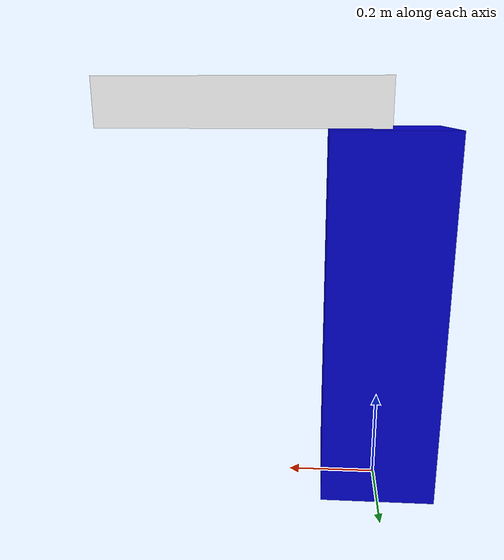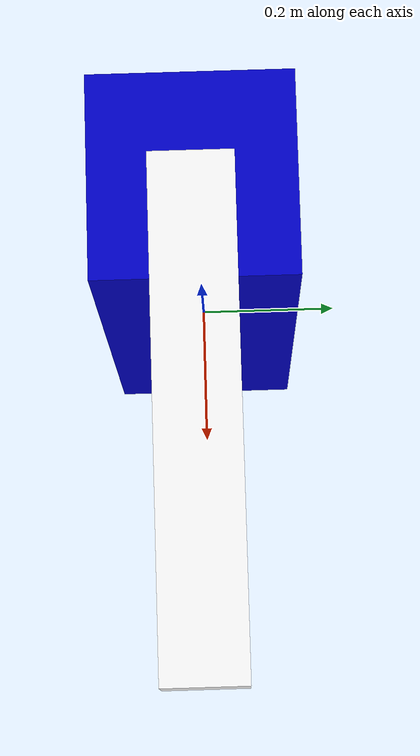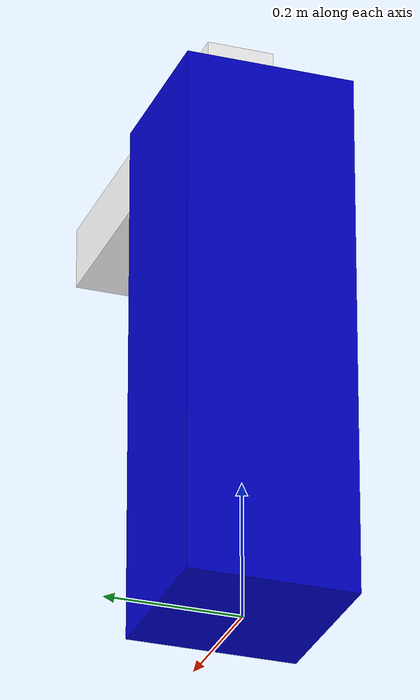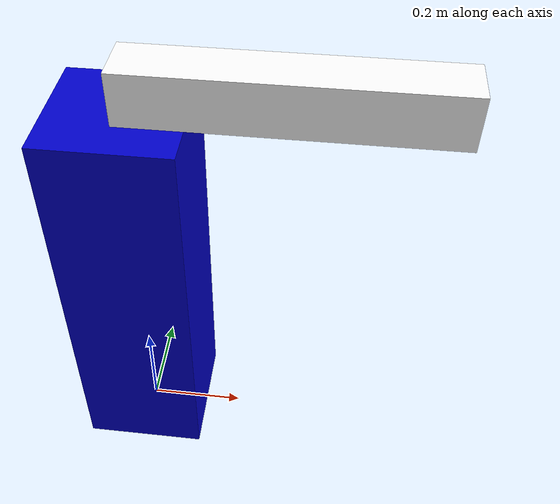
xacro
<?xml version="1.0"?>
<robot name="manipulator_2dof" xmlns:xacro="http://www.ros.org/wiki/xacro">

    <xacro:include filename="$(find arcs2_description)/urdf/inertias.xacro"/>
    <xacro:include filename="$(find arcs2_description)/urdf/materials.xacro"/>
    <xacro:include filename="$(find arcs2_description)/urdf/ros2_control_manipulator.xacro"/>

    <xacro:property name="prismatic_min_travel" value="-0.01"/>
    <xacro:property name="prismatic_max_travel" value="1"/>

    <xacro:property name="link1_length" value="0.25"/>
    <xacro:property name="link1_width" value="0.25"/>
    <xacro:property name="link1_height" value="0.8"/>
    <xacro:property name="link1_mass" value="5.0"/>

    <xacro:property name="revolute_min_angle" value="-${pi/4}"/>
    <xacro:property name="revolute_max_angle" value="${pi/4}"/>

    <xacro:property name="link2_length" value="0.6"/>
    <xacro:property name="link2_width" value="0.1"/>
    <xacro:property name="link2_height" value="0.1"/>
    <xacro:property name="link2_mass" value="5.0"/>

    <link name="world">
    </link>

    <joint name="joint1" type="prismatic">
        <parent link="world"/>
        <child link="link1"/>
        <origin xyz="0 0 0" rpy="0 0 0"/>
        <axis xyz="0 0 1"/>
        <limit lower="${prismatic_min_travel}" upper="${prismatic_max_travel}" effort="100" velocity="1"/>
    </joint>

    <link name="link1">
        <visual>
            <origin xyz="0 0 ${link1_height/2}" rpy="0 0 0"/>
            <geometry>
                <box size="${link1_length} ${link1_width} ${link1_height}"/>
            </geometry>
            <material name="blue"/>
        </visual>
        <collision>
            <origin xyz="0 0 ${link1_height/2}" rpy="0 0 0"/>
            <geometry>
                <box size="${link1_length} ${link1_width} ${link1_height}"/>
            </geometry>
        </collision>
        <xacro:inertial_box mass="${link1_mass}" x="${link1_length}" y="${link1_width}" z="${link1_height}">
            <origin xyz="0 0 ${link1_height/2}" rpy="0 0 0"/>
        </xacro:inertial_box>
    </link>

    <joint name="joint2" type="revolute">
        <parent link="link1"/>
        <child link="link2"/>
        <origin xyz="0 0 ${link1_height}" rpy="${pi/2} 0 0"/>
        <axis xyz="0 0 1"/>
        <limit lower="${revolute_min_angle}" upper="${revolute_max_angle}" effort="100" velocity="1"/>
    </joint>

    <link name="link2">
        <visual>
            <origin xyz="${link2_length/2} ${link2_width/2} 0" rpy="0 0 0"/>
            <geometry>
                <box size="${link2_length} ${link2_width} ${link2_height}"/>
            </geometry>
            <material name="white"/>
        </visual>
        <collision>
            <origin xyz="${link2_length/2} ${link2_width/2} 0" rpy="0 0 0"/>
            <geometry>
                <box size="${link2_length} ${link2_width} ${link2_height}"/>
            </geometry>
        </collision>
        <xacro:inertial_box mass="${link2_mass}" x="${link2_length}" y="${link2_width}" z="${link2_height}">
            <origin xyz="${link1_length/2} ${link2_width/2} 0" rpy="0 0 0"/>
        </xacro:inertial_box>
    </link>

    <joint name="ee" type="fixed">
        <parent link="link2"/>
        <child link="ee_link"/>
        <origin xyz="${link2_length} ${link2_width/2} 0" rpy="0 0 0"/>
    </joint>

    <link name="ee_link">
    </link>

</robot>

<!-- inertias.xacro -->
<robot xmlns:xacro="http://www.ros.org/wiki/xacro">

  <xacro:macro name="inertial_box" params="mass x y z *origin">
    <inertial>
      <xacro:insert_block name="origin"/>
      <mass value="${mass}"/>
      <inertia ixx="${(1/12) * mass * (y*y+z*z)}" ixy="0.0" ixz="0.0"
               iyy="${(1/12) * mass * (x*x+z*z)}" iyz="0.0"
               izz="${(1/12) * mass * (x*x+y*y)}"/>
    </inertial>
  </xacro:macro>

  <xacro:macro name="inertial_cylinder" params="mass radius length *origin">
    <inertial>
      <xacro:insert_block name="origin"/>
      <mass value="${mass}"/>
      <inertia ixx="${(1/12) * mass * (3*radius*radius + length*length)}" ixy="0.0" ixz="0.0"
               iyy="${(1/12) * mass * (3*radius*radius + length*length)}" iyz="0.0"
               izz="${(1/2) * mass * radius*radius}"/>
    </inertial>
  </xacro:macro>

  <xacro:macro name="inertial_sphere" params="mass radius *origin">
    <inertial>
      <xacro:insert_block name="origin"/>
      <mass value="${mass}"/>
      <inertia ixx="${(2/5) * mass * radius*radius}" ixy="0.0" ixz="0.0"
               iyy="${(2/5) * mass * radius*radius}" iyz="0.0"
               izz="${(2/5) * mass * radius*radius}"/>
    </inertial>
  </xacro:macro>

</robot>

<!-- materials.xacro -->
<robot xmlns:xacro="http://www.ros.org/wiki/xacro">

    <material name="blue">
        <color rgba="0 0 0.8 1"/>
    </material>

    <material name="white">
        <color rgba="1 1 1 1"/>
    </material>

    <material name="chassis_grey">
        <color rgba="0.5 0.5 0.5 1.0"/>
    </material>

    <material name="wheel_black">
        <color rgba="0.1 0.1 0.1 1.0"/>
    </material>

    <material name="knuckle_orange">
        <color rgba="0.9 0.45 0.1 1.0"/>
    </material>
</robot>
